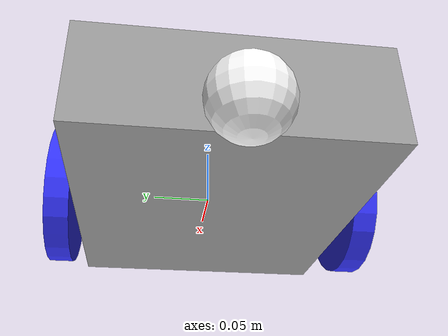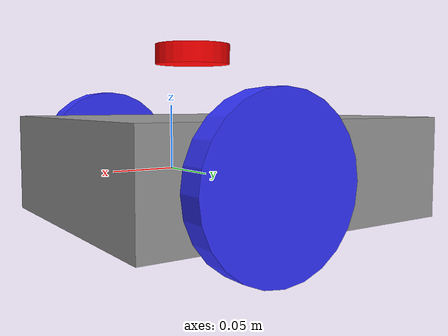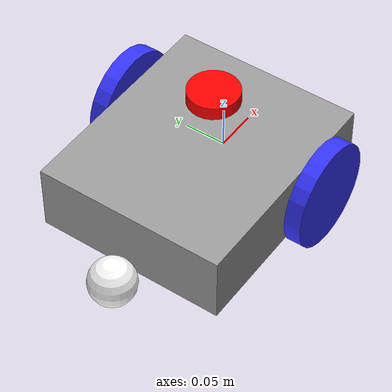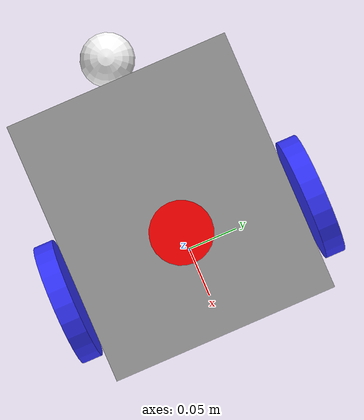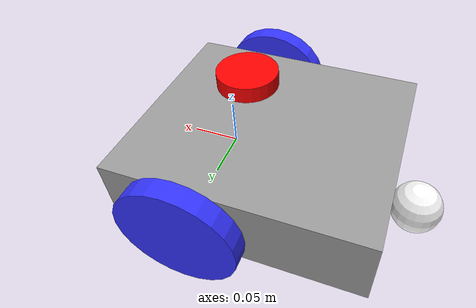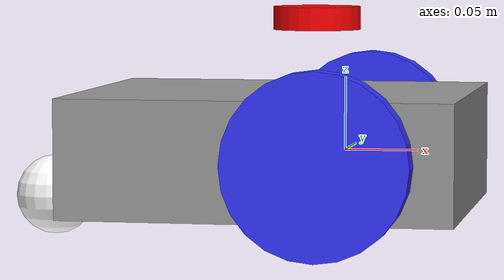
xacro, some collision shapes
<?xml version="1.0"?>
<robot xmlns:xacro="http://www.ros.org/wiki/xacro"  name="robot">

    <xacro:include filename="robot_core.xacro"/>
    <xacro:include filename="robot_material.xacro"/>
    <xacro:include filename="robot_gazebo.xacro"/>
    <xacro:include filename="robot_lidar.xacro"/>
    <xacro:include filename="inertial_macros.xacro"/>

</robot>

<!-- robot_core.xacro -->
<robot xmlns:xacro="http://www.ros.org/wiki/xacro">
<xacro:include filename="inertial_macros.xacro"/>

<xacro:property name="chassis_length" value="0.266"/>
<xacro:property name="chassis_width" value="0.228"/>
<xacro:property name="chassis_height" value="0.081"/>
<xacro:property name="wheel_radius" value="0.0615"/>
<xacro:property name="wheel_thickness" value="0.02"/>
<xacro:property name="axle_offset" value="0.0455"/>
<xacro:property name="caster_radius" value="0.012"/>
<xacro:property name="caster_x_offset" value="-0.207"/>
<xacro:property name="caster_z_offset" value="-0.035"/>
<xacro:property name="chassis_mass" value="0.98"/>
<xacro:property name="wheel_mass" value="0.058"/>
<xacro:property name="caster_mass" value="0.022"/>
<xacro:property name="lidar_mass" value="0.207"/>
<xacro:property name="lidar_radius" value="0.03025"/>
<xacro:property name="lidar_height" value="0.016"/>
<xacro:property name="lidar_stand_height" value="0.0424"/>
<xacro:property name="BLANK" value="0.0"/>

    <!-- BASE LINK -->
    <link name="base_link">

    </link>

    <!-- CHASSIS LINK -->
    <joint name="chassis_joint" type="fixed">
        <origin xyz="0.0 0.0 0.0" rpy="0.0 0.0 0.0"/>
        <parent link="base_link"/>
        <child link="chassis_link"/>
    </joint>
    <link name="chassis_link">
        <visual>
            <origin xyz="-${axle_offset} 0.0 0.0" rpy="0.0 0.0 0.0"/>
            <geometry>
                <!-- box size="${chassis_length} ${chassis_width} ${chassis_height}"/ -->
                <mesh filename="package://my_bot/description/meshes/Stingray.stl" scale="0.001 0.001 0.001"/>
            </geometry>
            <material name="gray"/>
        </visual>
        <collision>
            <origin xyz="-${axle_offset} 0.0 0.0" rpy="0.0 0.0 0.0"/>
            <geometry>
                <!-- mesh filename="package://my_bot/description/meshes/Stingray5.stl" scale="0.001 0.001 0.001"/ -->
                <box size="${chassis_length} ${chassis_width} ${chassis_height}"/>
            </geometry>
        </collision>
        <xacro:inertial_box mass="${chassis_mass}" x="${chassis_length}" y="${chassis_width}" z="${chassis_height}">
            <origin xyz="0.0 0.0 0.0" rpy="0.0 0.0 0.0"/>
        </xacro:inertial_box>
    </link>

    <!-- WHEEL LINKS -->
    <joint name="left_wheel_joint" type="continuous">
        <parent link="base_link"/>
        <child link="left_wheel_link"/>
        <origin xyz="0.0 0.13 0.0" rpy="-${pi/2} 0.0 0.0"/>
        <axis xyz="0.0 0.0 1.0"/>
    </joint>

    <link name="left_wheel_link">
        <visual>
            <geometry>
                <cylinder radius="0.062" length="0.02"/>
            </geometry>
            <material name="blue"/>
        </visual>
        <collision>
            <geometry>
                <cylinder radius="0.062" length="0.02"/>
            </geometry>
        </collision>
        <xacro:inertial_cylinder mass="0.141" length="0.02" radius="0.062">
            <origin xyz="0.0 0.0 0.0" rpy="0.0 0.0 0.0"/>
        </xacro:inertial_cylinder>
    </link>

    <joint name="right_wheel_joint" type="continuous">
        <parent link="base_link"/>
        <child link="right_wheel_link"/>
        <origin xyz="0.0 -0.13 0.0" rpy="${pi/2} 0.0 0.0"/>
        <axis xyz="0.0 0.0 -1.0"/>
    </joint>

    <link name="right_wheel_link">
        <visual>
            <geometry>
                <cylinder radius="0.062" length="0.02"/>
            </geometry>
            <material name="blue"/>
        </visual>
        <collision>
            <geometry>
                <cylinder radius="0.062" length="0.02"/>
            </geometry>
        </collision>
        <xacro:inertial_cylinder mass="0.141" length="0.02" radius="0.062">
            <origin xyz="0.0 0.0 0.0" rpy="0.0 0.0 0.0"/>
        </xacro:inertial_cylinder>
    </link>

    <joint name="caster_wheel_joint" type="fixed">
        <origin xyz="${caster_x_offset} 0.0 ${caster_z_offset}" rpy="0.0 0.0 0.0"/>
        <parent link="base_link"/>
        <child link="caster_wheel_link"/>
        <axis xyz="0.0 0.0 0.0"/>
        <limit lower="0.0" upper="0.0" effort="0.0" velocity="0.0"/>
    </joint>
    <link name="caster_wheel_link">
        <visual name="">
            <origin xyz="0.0 0.0 0.0" rpy="0.0 0.0 0.0"/>
            <geometry>
                <sphere radius=".028"/>
            </geometry>
            <material name="white"/>
        </visual>
        <collision>
            <origin xyz="0.0 0.0 0.0" rpy="0.0 0.0 0.0"/>
            <geometry>
                <sphere radius="0.028"/>
            </geometry>
        </collision>
        <xacro:inertial_sphere mass="0.152" radius="0.058">
            <origin xyz="0.0 0.0 0.0" rpy="0.0 0.0 0.0"/>
        </xacro:inertial_sphere>
    </link>

</robot>

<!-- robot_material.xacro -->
<robot xmlns:xacro="http://www.ros.org/wiki/xacro">

    <material name="white">
        <color rgba="1.0 1.0 1.0 1.0"/>
    </material>

    <material name="orange">
        <color rgba="1.0 0.3 0.2 1.0"/>
    </material>

    <material name="blue">
        <color rgba="0.2 0.2 1.0 1.0"/>
    </material>

    <material name="black">
       <color rgba="0.0 0.0 0.0 1.0"/>
    </material>

    <material name="gray">
        <color rgba="0.6 0.6 0.6 1.0"/>
    </material>

    <material name="red">
        <color rgba="1 0 0 1"/>
    </material>

</robot>

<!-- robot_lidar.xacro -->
<robot xmlns:xacro="http://www.ros.org/wiki/xacro" >

    <joint name="laser_joint" type="fixed">
        <parent link="chassis_link"/>
        <child link="laser_frame"/>
        <origin xyz="-0.02 0 ${(chassis_height/2) + (lidar_stand_height) + (lidar_height/2)}" rpy="0 0 0"/>
    </joint>

<link name="laser_frame">
    <visual>
        <geometry>
            <cylinder radius="${lidar_radius}" length="${lidar_height}"/>
        </geometry>
        <material name="red"/>
    </visual>
    <collision>
        <geometry>
            <cylinder radius="${lidar_radius}" length="${lidar_height}"/>
        </geometry>
    </collision>
    <xacro:inertial_cylinder mass="${lidar_mass}" length="${lidar_height}" radius="${lidar_radius}">
        <origin xyz="0 0 0" rpy="0 0 0"/>
    </xacro:inertial_cylinder>
</link>

</robot>
